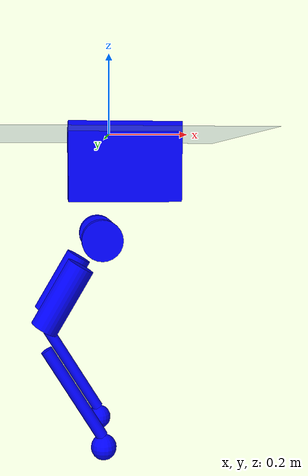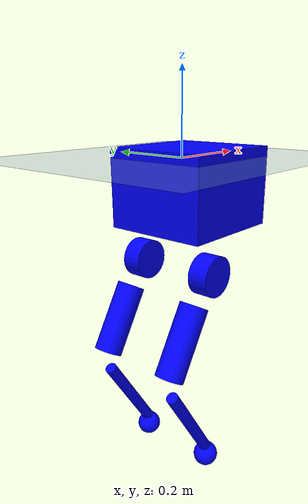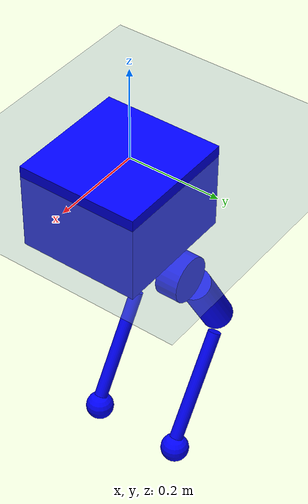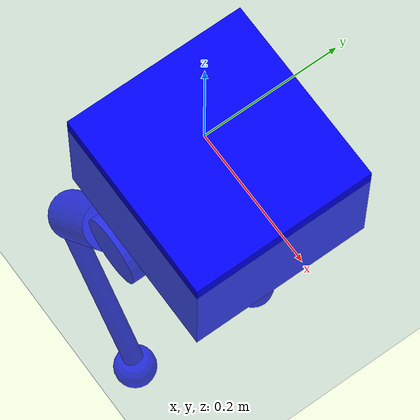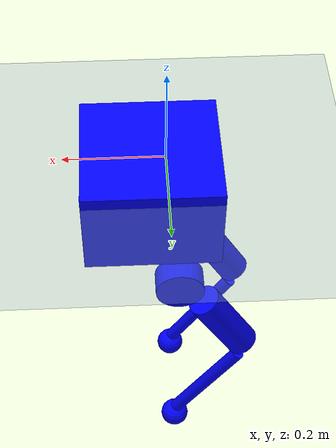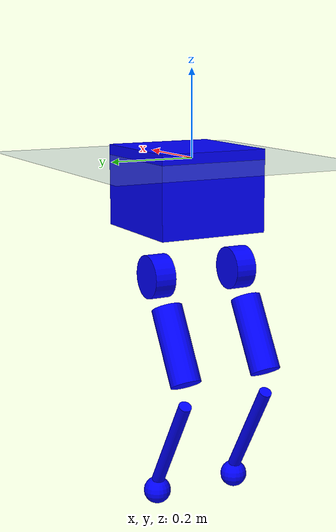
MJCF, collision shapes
<mujoco model="point_foot">
    <compiler angle="radian" meshdir="../meshes/" />
    <size njmax="500" nconmax="100" />

    <default>
        <light castshadow="false" diffuse="1 1 1" />
        <camera fovy="60"/>
        <default class="visual">
            <geom contype="0" conaffinity="0" group="1" type="mesh" rgba="0.9 0.9 0.9 1.0"/>
        </default>
        <joint armature="0.01" damping="0.01"/>
        <geom contype="1" conaffinity="1" condim="3" friction="0.6 0.005 0.0001" rgba="0.5 0.6 0.7 0.0" margin="0.001" group="0" />
    </default>
    <visual>
        <rgba com="0.502 1.0 0 0.5" contactpoint="1.0 1.0 0.6 0.4" contactforce="0.2 0.98 0.2 0.8"/>
        <scale com="0.2" forcewidth="0.05" contactwidth="0.10" contactheight="0.04"/>
    </visual>

    <asset>
        <mesh name="base_Link" file="base_Link.STL" />
        <mesh name="abad_L_Link" file="abad_L_Link.STL" />
        <mesh name="hip_L_Link" file="hip_L_Link.STL" />
        <mesh name="knee_L_Link" file="knee_L_Link.STL" />
        <mesh name="foot_L_Link" file="foot_L_Link.STL" />
        <mesh name="abad_R_Link" file="abad_R_Link.STL" />
        <mesh name="hip_R_Link" file="hip_R_Link.STL" />
        <mesh name="knee_R_Link" file="knee_R_Link.STL" />
        <mesh name="foot_R_Link" file="foot_R_Link.STL" />
    </asset>

    <asset>
        <texture type='skybox' builtin='gradient' width='512' height='512' rgb1="1.0 1.0 1.0" rgb2="1.0 1.0 1.0"/>
        <texture name="texplane" type="2d" builtin="checker" rgb1="0.35 0.35 0.35" rgb2="0.55 0.55 0.55" width="512" height="512" mark="cross" markrgb=".8 .8 .8"/>
        <material name="matplane" reflectance="0.0" texture="texplane" texrepeat="1 1" texuniform="true"/>
    </asset>
        <option timestep="0.001"/>

    <keyframe>
        <key name="0" qpos="0 0 0.85 1 0 0 0 0 0 0 0 0 0" />
    </keyframe>

    <worldbody>
        <geom name="floor" rgba="0.5 0.6 0.7 1" pos="0 0 0" size="0 0 0.25" type="plane" material="matplane" condim="3"/>
        <camera name="track" mode="trackcom" pos="0 -2.3 1.6" xyaxes="1 0 0 0 0.707 0.707"/>
        <light directional="true" diffuse=".8 .8 .8" pos="0 0 10" dir="0 0 -10"/>

        <body name="base_Link" pos="0 0 0">
            <inertial pos="0.0457123 0.000139854 -0.163809" quat="0.972578 -0.00615364 -0.232461 0.00398682" mass="12" diaginertia="0.154712 0.11093 0.0846371" />
            <joint name="floating_base_Joint" type="free" limited="false" damping="0.0000" stiffness="0.0000" armature="0"/>
            <site name="imu" pos="0 0 0"/>
            <geom class="visual" rgba="0.79216 0.81961 0.93333 1" mesh="base_Link" />
            <geom name="base_collision" size="0.135 0.13 0.095" pos="0.03 0 -0.072" type="box" rgba="0 0 1 0" />

            <body name="abad_R_Link" pos="0.05556 -0.105 -0.2602">
                <inertial pos="-0.06977 -0.04479 0.00057" quat="0.393019 0.394141 0.579772 0.595024" mass="1.469" diaginertia="0.00252289 0.00208104 0.00139163" />
                <joint name="abad_R_Joint" pos="0 0 0" axis="1 0 0" limited="true" range="-1.39626 0.38397" />
                <geom class="visual" rgba="0.79216 0.81961 0.93333 1" mesh="abad_R_Link" />
                <geom name="abad_R_collision" type="cylinder" pos="-0.08 0 0" euler="1.57 0 0" size="0.05 0.025" rgba="0 0 1 0" />

                <body name="hip_R_Link" pos="-0.077 -0.0205 0">
                    <inertial pos="-0.02869 0.0477 -0.03992" quat="0.426877 0.226903 0.192797 0.853885" mass="2.3" diaginertia="0.0233264 0.0230229 0.00277548" />
                    <joint name="hip_R_Joint" pos="0 0 0" axis="0 1 0" limited="true" range="-1.01229 1.39626" />
                    <geom class="visual" rgba="1 1 1 1" mesh="hip_R_Link" />
                    <geom name="hip_R_collision" type="cylinder" pos="-0.10 0.025 -0.14" euler="0 0.53 0" size="0.035 0.09" rgba="0 0 1 0" />

                    <body name="knee_R_Link" pos="-0.15 0.0205 -0.25981">
                        <inertial pos="0.05168 -0.00152 -0.08148" quat="0.687408 -0.19946 -0.202995 0.668191" mass="0.55" diaginertia="0.00419956 0.00414131 0.000138393" />
                        <joint name="knee_R_Joint" pos="0 0 0" axis="0 1 0" limited="true" range="-1.36136 0.872665" />
                        <geom class="visual" rgba="0.79216 0.81961 0.93333 1" mesh="knee_R_Link" />
                        <geom name="knee_R_collision" type="cylinder" pos="0.078 0 -0.12" euler="0 -0.55 0" size="0.015 0.13" rgba ="0 0 1 0"/>

                        <body name="foot_R_Link" pos="0.150 0 -0.2598">
                            <inertial pos="0 0 0" quat="1 0 0 0" mass="0.1" diaginertia=" 4e-5 4e-5 4e-5" />
                            <geom class="visual" pos="0 0 0" rgba="0.26667 0.26667 0.26667 1" mesh="foot_L_Link" />
                            <geom name="foot_R_collision" type="sphere" pos="0 0 0" size="0.032" rgba="0 0 1 0" />
                            <site name="foot_R_site" pos="0 0 0" size="0.032" />
                        </body>
                    </body>
                </body>
            </body>

            <body name="abad_L_Link" pos="0.05556 0.105 -0.2602">
                <inertial pos="-0.06977 0.04479 0.00057" quat="0.595024 0.579772 0.394141 0.393019" mass="1.469" diaginertia="0.00252289 0.00208104 0.00139163" />
                <joint name="abad_L_Joint" pos="0 0 0" axis="1 0 0" limited="true" range="-0.38397 1.39626" />
                <geom class="visual" rgba="0.79216 0.81961 0.93333 1" mesh="abad_L_Link" />
                <geom name="abad_L_collision" type="cylinder" pos="-0.08 0 0" euler="1.57 0 0" size="0.05 0.025" rgba="0 0 1 0" />

                <body name="hip_L_Link" pos="-0.077 0.0205 0">
                    <inertial pos="-0.02869 -0.0477 -0.03992" quat="0.853885 0.192797 0.226903 0.426877" mass="2.3" diaginertia="0.0233264 0.0230229 0.00277548" />
                    <joint name="hip_L_Joint" pos="0 0 0" axis="0 1 0" limited="true" range="-1.01229 1.39626" />
                    <geom class="visual" rgba="1 1 1 1" mesh="hip_L_Link" />
                    <geom name="hip_L_collision" type="cylinder" pos="-0.1 -0.02 -0.14" euler="0 0.53 0" size="0.035 0.09" rgba="0 0 1 0" />

                    <body name="knee_L_Link" pos="-0.15 -0.0205 -0.25981">
                        <inertial pos="0.05168 0.00152 -0.08148" quat="0.668191 -0.202995 -0.19946 0.687408" mass="0.55" diaginertia="0.00419956 0.00414131 0.000138393" />
                        <joint name="knee_L_Joint" pos="0 0 0" axis="0 1 0" limited="true" range="-1.36136 0.872665" />
                        <geom class="visual" rgba="0.79216 0.81961 0.93333 1" mesh="knee_L_Link" />
                        <geom name="knee_L_collision" type="cylinder" pos="0.078 0 -0.12" euler="0 -0.55 0" size="0.015 0.13" rgba ="0 0 1 0"/>

                        <body name="foot_L_Link" pos="0.150 0 -0.2598">
                            <inertial pos="0 0 0" quat="1 0 0 0" mass="0.1" diaginertia=" 4e-5 4e-5 4e-5" />
                            <geom class="visual" pos="0 0 0" rgba="0.26667 0.26667 0.26667 1" mesh="foot_L_Link" />
                            <geom name="foot_L_collision" type="sphere" pos="0 0 0" size="0.032" rgba="0 0 1 0" />
                            <site name="foot_L_site" pos="0 0 0" size="0.032" />
                        </body>
                    </body>
                </body>
            </body>

        </body>
    </worldbody>

    <actuator>
        <motor name="abad_R_Joint"  gear="1"  joint="abad_R_Joint" ctrllimited='true' ctrlrange='-80 80' />
        <motor name="hip_R_Joint"   gear="1"  joint="hip_R_Joint"  ctrllimited='true' ctrlrange='-80 80' />
        <motor name="knee_R_Joint"  gear="1"  joint="knee_R_Joint" ctrllimited='true' ctrlrange='-80 80'/>
        <motor name="abad_L_Joint"  gear="1"  joint="abad_L_Joint" ctrllimited='true' ctrlrange='-80 80'/>
        <motor name="hip_L_Joint"   gear="1"  joint="hip_L_Joint"  ctrllimited='true' ctrlrange='-80 80'/>
        <motor name="knee_L_Joint"  gear="1"  joint="knee_L_Joint" ctrllimited='true' ctrlrange='-80 80'/>
    </actuator>

    <sensor>
        <jointpos name="abad_R_Joint_pos"    joint="abad_R_Joint" noise="0.01"/>
        <jointpos name="hip_R_Joint_pos"     joint="hip_R_Joint" noise="0.01"/>
        <jointpos name="knee_R_Joint_pos"    joint="knee_R_Joint" noise="0.01"/>
        <jointpos name="abad_L_Joint_pos"    joint="abad_L_Joint" noise="0.01"/>
        <jointpos name="hip_L_Joint_pos"     joint="hip_L_Joint" noise="0.01"/>
        <jointpos name="knee_L_Joint_pos"    joint="knee_L_Joint" noise="0.01"/>

        <jointvel name="abad_R_Joint_vel"    joint="abad_R_Joint" noise="0.01"/>
        <jointvel name="hip_R_Joint_vel"     joint="hip_R_Joint" noise="0.01"/>
        <jointvel name="knee_R_Joint_vel"    joint="knee_R_Joint" noise="0.01"/>
        <jointvel name="abad_L_Joint_vel"    joint="abad_L_Joint" noise="0.01"/>
        <jointvel name="hip_L_Joint_vel"     joint="hip_L_Joint" noise="0.01"/>
        <jointvel name="knee_L_Joint_vel"    joint="knee_L_Joint" noise="0.01"/>

        <jointactuatorfrc name="abad_R_Joint_torque"    joint="abad_R_Joint" noise="0.01"/>
        <jointactuatorfrc name="hip_R_Joint_torque"     joint="hip_R_Joint" noise="0.01"/>
        <jointactuatorfrc name="knee_R_Joint_torque"    joint="knee_R_Joint" noise="0.01"/>
        <jointactuatorfrc name="abad_L_Joint_torque"    joint="abad_L_Joint" noise="0.01"/>
        <jointactuatorfrc name="hip_L_Joint_torque"     joint="hip_L_Joint" noise="0.01"/>
        <jointactuatorfrc name="knee_L_Joint_torque"    joint="knee_L_Joint" noise="0.01"/>

        <framequat name="imu_quat" objtype="site" objname="imu" noise="0.01"/>
        <gyro name="imu_gyro" site="imu" noise="0.01"/>
        <accelerometer name="imu_acc" site="imu" noise="0.01"/>

        <framepos name="frame_pos" objtype="site" objname="imu" />
        <framelinvel name="frame_vel" objtype="site" objname="imu" />

        <touch name="foot_force_R" site="foot_R_site" />
        <touch name="foot_force_L" site="foot_L_site" />
    </sensor>

</mujoco>
